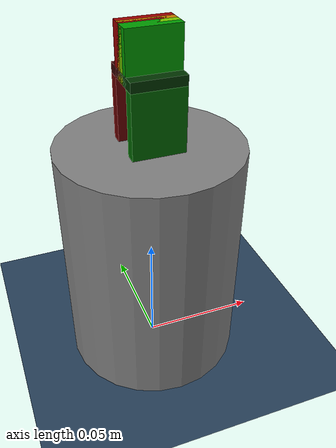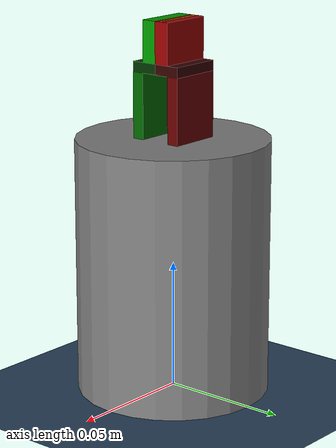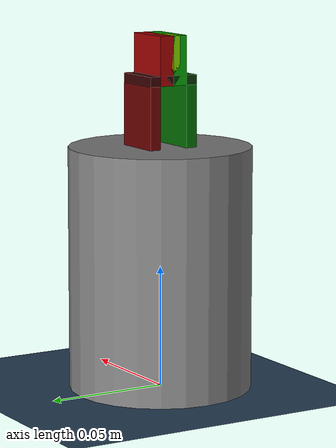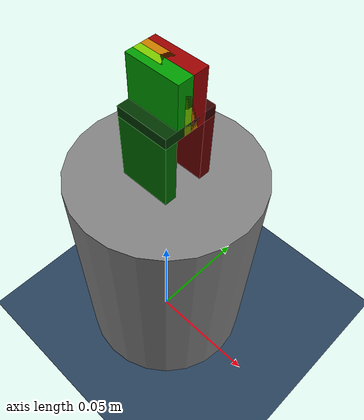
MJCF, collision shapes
<mujoco model="robotiq_hande">

  <compiler angle="radian" meshdir="assets" autolimits="true"/>

  <option integrator="implicitfast"/>

  <visual>
    <headlight diffuse="0.6 0.6 0.6" ambient="0.3 0.3 0.3" specular="0 0 0"/>
    <rgba haze="0.15 0.25 0.35 1"/>
    <global azimuth="60" elevation="-20"/>
  </visual>

  <asset>
    <texture type="skybox" builtin="gradient" rgb1="0.3 0.5 0.7" rgb2="0 0 0" width="512" height="3072"/>
    <texture type="2d" name="groundplane" builtin="checker" mark="edge" rgb1="0.2 0.3 0.4" rgb2="0.1 0.2 0.3"
      markrgb="0.8 0.8 0.8" width="300" height="300"/>
    <material name="groundplane" texture="groundplane" texuniform="true" texrepeat="5 5" reflectance="0.2"/>

    <mesh name="hande" file="hande.stl" />
    <mesh name="coupler" file="coupler.stl" />
    <mesh name="right_finger" file="finger_1.stl" />
    <mesh name="left_finger" file="finger_2.stl" />
  </asset>

  <default>
    <default class="ur5e">

        <default class="hande_visual">
            <geom type="mesh" contype="0" conaffinity="0" group="2" rgba="0.6 0.6 0.6 1"/>

            <default class="finger_visual">
                <geom type="mesh" contype="0" conaffinity="0" group="2" rgba="0.6 0.6 0.6 1" pos="-0.025 0 0"/>
            </default>
        </default>

        <default class="hande_collision">
            <geom group="3" condim="6" friction="10 5e-1 1e-4"/>
            <default class="hande_base">
                <geom type="cylinder" size="0.0375 0.05" pos="0 0 0.05"/>
            </default>

            <default class="finger">
                <joint axis="1 0 0" type="slide" range="0 0.025"/>
            </default>

            <default class="finger_base">
                <geom type="box" size="0.0105 0.0024 0.01325" pos="0.0084 0 0.01325" quat="1 0 0 1"/>
            </default>
            <default class="finger_connect">
                <geom type="box" size="0.0105 0.0054 0.002" pos="0.0054 0 0.0285" quat="1 0 0 1"/>
            </default>
            <default class="fingertip">
                <geom type="box" size="0.0105 0.003 0.010" pos="0.003 0 0.0365" quat="1 0 0 1"/>
            </default>

        </default>

        <default class="canonical_fingertip_surafece_site">
          <site type="box" size="0.0105 0.003 0.010" rgba="1 1 0 0.5" pos="0 0 0.0365" quat="1 0 0 -1"/>
        </default>

    </default>
  </default>

  <visual>
    <global azimuth="120" elevation="-20" />
    <headlight diffuse="0.6 0.6 0.6" specular="0 0 0" />
    <rgba haze="0.15 0.25 0.35 1" />
  </visual>

  <statistic meansize="0.1" extent="1" center="4 0 0" />
  <worldbody>

    <light pos="0 0 1"/>
    <light pos="0 -0.2 1" dir="0 0.2 -0.8" directional="true"/>
    <geom name="floor" size="0 0 0.05" type="plane" material="groundplane"/>

    <body name="hande_mount" pos="0 0 0">
        <body name="hand" childclass="ur5e" quat="1 0 0 -1">
            <geom class="hande_visual" mesh="coupler" rgba="0.1 0.1 0.1 1"/>
            <geom class="hande_visual" mesh="hande"   rgba="0.1 0.1 0.1 1"/>
            <geom class="hande_base"/>

            <body name="canonical_fingertip_surafece" pos="0 0 0.099">
              <site class="canonical_fingertip_surafece_site" name="canonical_fingertip_surafece"/>
            </body>

            <body name="left_finger" pos="0 0 0.099">
                <inertial pos="0.02262 -0.00759 0.00738" quat="0.871952 0.0369732 -0.211073 0.440205" mass="0.03804" diaginertia="1.22763e-05 1.22763e-05 1.22763e-05"/>
                <joint name="finger_joint1" class="finger"/>
                <!-- collision -->
                <geom class="finger_base"    name="finger_base_left"    rgba="0 0.4 0 1"/>
                <geom class="finger_connect" name="finger_connect_left" rgba="0 0.2 0 1"/>
                <geom class="fingertip"      name="fingertip_left"      rgba="0 0.6 0 1"/>
                <!-- visual -->
                <geom class="finger_visual" mesh="left_finger" quat="0 0 0 1"/>
            </body>

            <body name="right_finger" pos="0 0 0.099" quat="0 0 0 1">
                <inertial pos="-0.02262 0.00759 0.00738" quat="0.871952 -0.0369732 0.211073 0.440205" mass="0.03804" diaginertia="1.22763e-05 1.22763e-05 1.22763e-05"/>
                <joint name="finger_joint2" class="finger"/>
                <!-- collision -->
                <geom class="finger_base"    name="finger_base_right"    rgba="0.4 0 0 1"/>
                <geom class="finger_connect" name="finger_connect_right" rgba="0.2 0 0 1"/>
                <geom class="fingertip"      name="fingertip_right"      rgba="0.6 0 0 1"/>
                <!-- visual -->
                <geom class="finger_visual"   mesh="right_finger" />
            </body>
        </body>
    </body>

  </worldbody>

  <contact>
    <exclude body1="hand" body2="left_finger"/>
    <exclude body1="hand" body2="right_finger"/>
  </contact>

  <tendon>
    <fixed name="split">
      <joint joint="finger_joint1" coef="0.5"/>
      <joint joint="finger_joint2" coef="0.5"/>
    </fixed>
  </tendon>

  <equality>
    <joint joint1="finger_joint1" joint2="finger_joint2" solimp="0.95 0.99 0.001" solref="0.005 1"/>
  </equality>

  <actuator>
    <!-- Remap original ctrlrange (0, 0.04) to (0, 255): 0.04 * 100 / 255 = 0.01568627451 -->
    <general class="ur5e" name="actuator_finger" tendon="split" forcerange="-100 100" ctrlrange="0 0.025"
      gainprm="100 0 0" biasprm="0 -100 -10"/>
  </actuator>

</mujoco>
